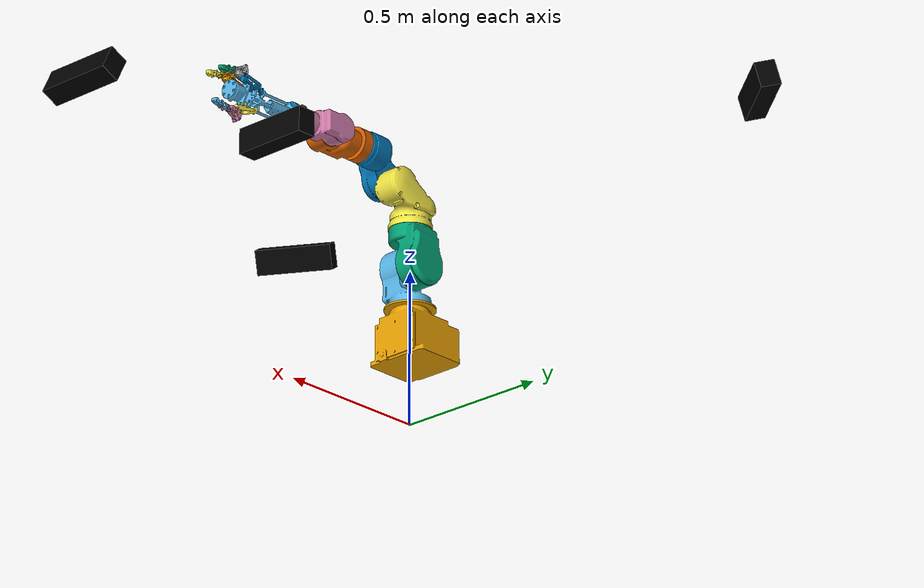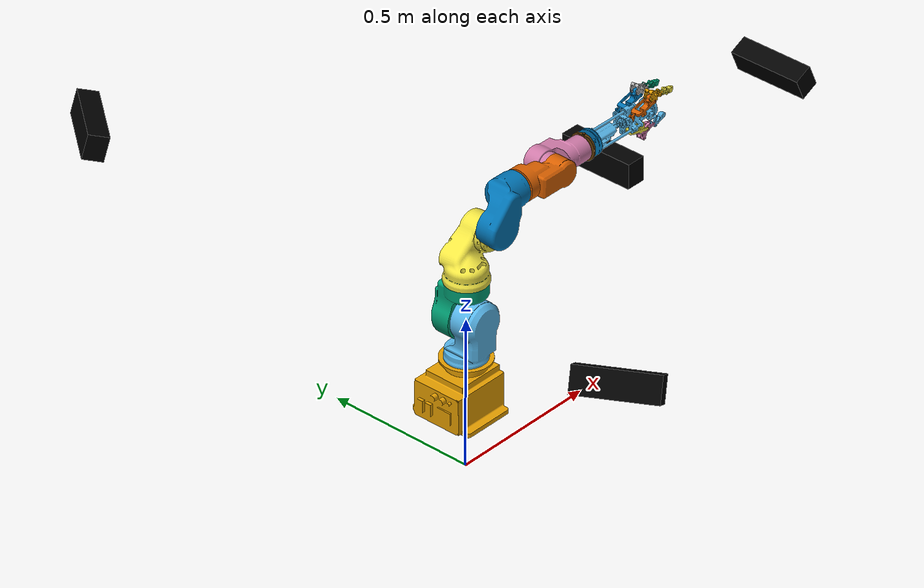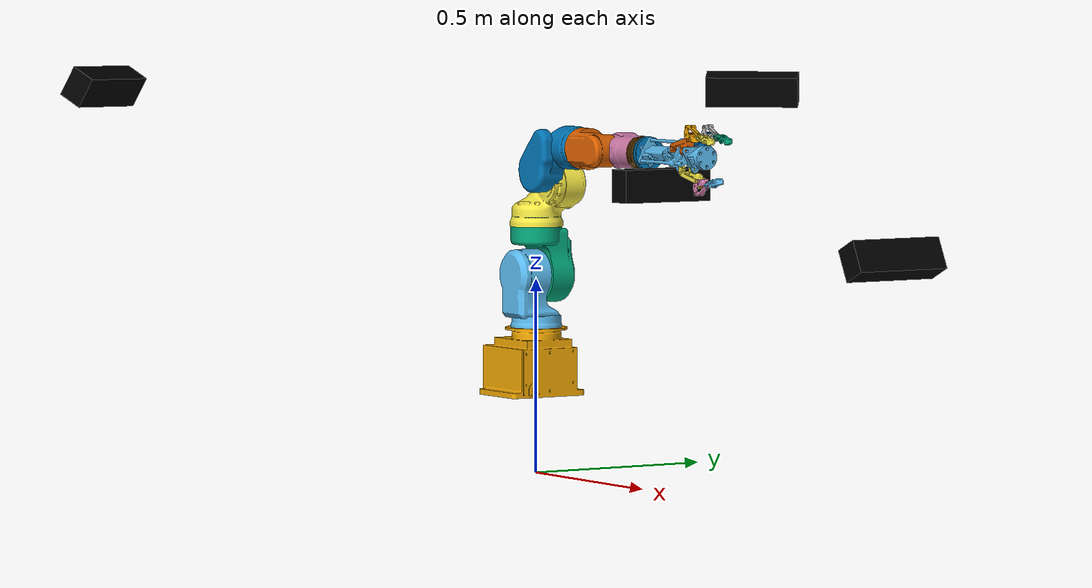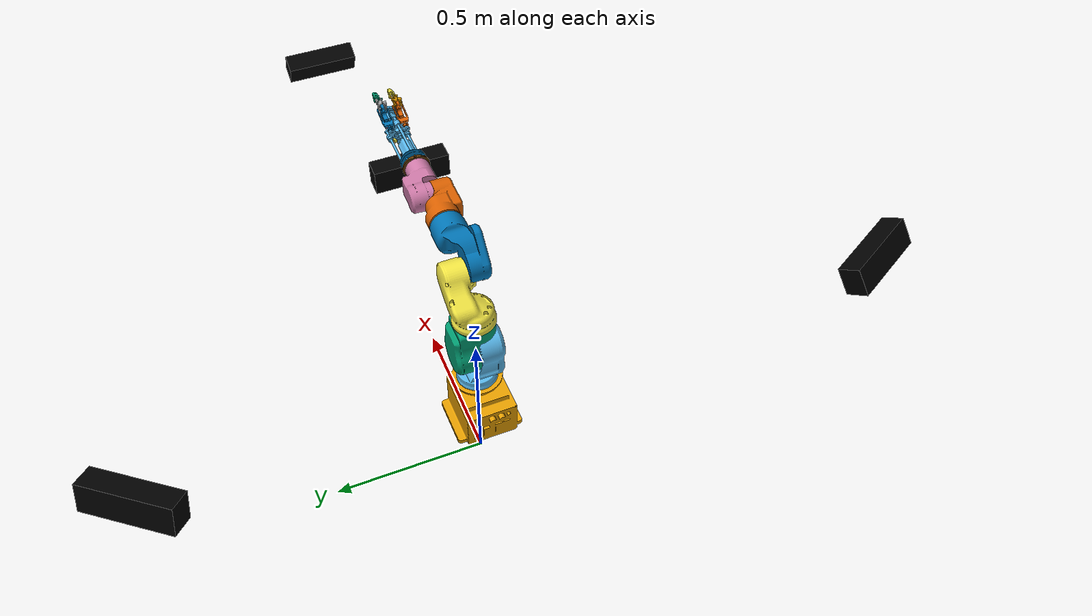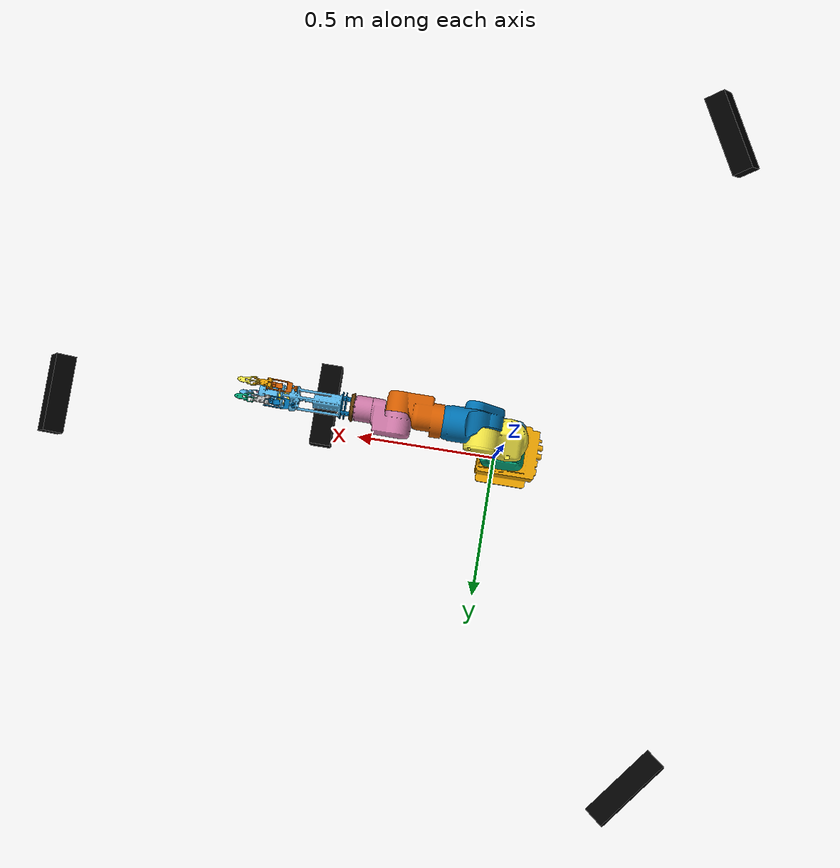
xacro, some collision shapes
<?xml version="1.0"?>
<robot name="sia5" xmlns:xacro="http://ros.org/wiki/xacro">
  <!-- File Include -->
  <xacro:include filename="$(find motoman_description)/urdf/sensor/kinect.urdf.xacro"/>
  <xacro:include filename="$(find motoman_description)/urdf/sensor/kinect.gazebo.xacro"/>
  <xacro:include filename="$(find motoman_description)/robots/sia5/sia5_with_dhand.urdf.xacro"/>

  <!-- add Kinect V2 -->
  <!-- Kinect_center -->
  <!-- Link -->
  <xacro:kinect2_link_box_v0 name="kinect_center_link"/>
  <link name="kinect_center_rgb_optical_frame"/>

  <!-- Joint -->
  <joint name="joint_kinect_center" type="fixed">
	<origin xyz="1.4721 0.0827 0.3932" rpy="-0.0031 0.4431 3.14" />
    <parent link="base_link"/>
    <child link="kinect_center_link"/>
  </joint>

  <joint name="joint_rgb_kinect_center" type="fixed">
    <origin rpy="${M_PI/2} ${M_PI} ${M_PI/2}"/>
    <parent link="kinect_center_link"/>
    <child link="kinect_center_rgb_optical_frame"/>
  </joint>

  <!-- Gazebo -->
  <xacro:kinect_gazebo name="kinect_center"/>

  <!-- Kinect_hand -->
  <!-- Link -->
  <xacro:kinect2_link_box_v0 name="kinect_hand_link"/>
  <link name="kinect_hand_rgb_optical_frame"/>

  <!-- Joint -->
  <joint name="joint_kinect_hand" type="fixed">
	<origin xyz="0.09 0 -0.035" rpy="${M_PI} 0 0" />
    <parent link="link_t"/>
    <child link="kinect_hand_link"/>
  </joint>

  <joint name="joint_rgb_kinect_hand" type="fixed">
    <origin rpy="${M_PI/2} ${M_PI} ${M_PI/2}"/>
    <parent link="kinect_hand_link"/>
    <child link="kinect_hand_rgb_optical_frame"/>
  </joint>

  <!-- Gazebo -->
  <xacro:kinect_gazebo name="kinect_hand"/>

  <!-- Kinect_right -->
  <!-- Link -->
  <xacro:kinect2_link_box_v0 name="kinect_right_link"/>
  <link name="kinect_right_rgb_optical_frame"/>

  <!-- Joint -->
  <joint name="joint_kinect_right" type="fixed">
  <origin xyz="-0.5255 -0.9966 0.7635" rpy="-0.0233 0.5223 0.481" />
    <parent link="base_link"/>
    <child link="kinect_right_link"/>
  </joint>

  <joint name="joint_rgb_kinect_right" type="fixed">
    <origin rpy="${M_PI/2} ${M_PI} ${M_PI/2}"/>
    <parent link="kinect_right_link"/>
    <child link="kinect_right_rgb_optical_frame"/>
  </joint>

  <!-- Gazebo -->
  <xacro:kinect_gazebo name="kinect_right"/>

  <!-- Kinect_left -->
  <!-- Link -->
  <xacro:kinect2_link_box_v0 name="kinect_left_link"/>
  <link name="kinect_left_rgb_optical_frame"/>

  <!-- Joint -->
  <joint name="joint_left_right" type="fixed">
  <!-- Calibrated position -->
  <!-- Test positions -->
  <!-- test state -->
  <origin xyz="-0.485969 1.00226 0.71287" rpy="3.13765 2.87986 2.4732" /><!-- estimated state -->

    <parent link="base_link"/>
    <child link="kinect_left_link"/>
  </joint>

  <joint name="joint_rgb_kinect_left" type="fixed">
    <origin rpy="${M_PI/2} ${M_PI} ${M_PI/2}"/>
    <parent link="kinect_left_link"/>
    <child link="kinect_left_rgb_optical_frame"/>
  </joint>

  <!-- Gazebo -->
  <xacro:kinect_gazebo name="kinect_left"/>

</robot>

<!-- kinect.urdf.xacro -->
<robot xmlns:xacro="http://ros.org/wiki/xacro">

<xacro:macro name="kinect2_link_box_v0" params="name">
    <link name="${name}">
      <visual>
		<material name="black"/>
        <geometry>
          <mesh filename="package://motoman_description/meshes/sensor/visual/COLLADA/kinectv2.stl"/>
        </geometry>
      </visual>
      <collision>
		<origin xyz="0 0 0.041"/>
        <geometry>
		  <box size="0.065 0.25 0.082"/>
        </geometry>
      </collision>
      <inertial>
        <mass value="0.935"/>
        <inertia ixx="0.0053937" ixy="0" ixz="0"
				 iyy="0.00085311" iyz="0"
				 izz="0.00519899" />
      </inertial>
    </link>
</xacro:macro>
</robot>

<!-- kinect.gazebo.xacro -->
<robot xmlns:xacro="http://ros.org/wiki/xacro">

  <xacro:include filename="$(find motoman_description)/urdf/common.xacro" />

  <xacro:macro name="kinect_gazebo" params="name">
    <gazebo reference="${name}_link">
      <mu1>0.2</mu1>
      <mu2>0.2</mu2>
      <material>Gazebo/Black</material>
      <!-- hd -->
      <sensor type="depth" name="${name}">
        <always_on>true</always_on>
        <update_rate>30.0</update_rate>
        <camera>
          <horizontal_fov>${84.1*M_PI/180.0}</horizontal_fov>
          <image>
            <format>B8G8R8</format>
            <width>512</width>
            <height>424</height>
          </image>
          <clip>
            <near>0.05</near>
            <far>4.5</far>
          </clip>
          <noise>
            <type>gaussian</type>
            <mean>0.0</mean>
            <stddev>0.005</stddev>
          </noise>
        </camera>
        <plugin name="${name}_camera_controller" filename="libgazebo_ros_openni_kinect.so">
          <cameraName>${name}/hd</cameraName>
          <alwaysOn>true</alwaysOn>
          <updateRate>30</updateRate>
          <imageTopicName>image_color</imageTopicName>
          <depthImageTopicName>image_depth</depthImageTopicName>
          <pointCloudTopicName>points</pointCloudTopicName>
          <cameraInfoTopicName>camera_info</cameraInfoTopicName>
          <depthImageCameraInfoTopicName>camera_info</depthImageCameraInfoTopicName>
          <frameName>${name}_rgb_optical_frame</frameName>
          <baseline>0.1</baseline>
          <distortion_k1>0.0</distortion_k1>
          <distortion_k2>0.0</distortion_k2>
          <distortion_k3>0.0</distortion_k3>
          <distortion_t1>0.0</distortion_t1>
          <distortion_t2>0.0</distortion_t2>
          <pointCloudCutoff>0.05</pointCloudCutoff>
          <pointCloudCutoffMax>4.5</pointCloudCutoffMax>
        </plugin>
      </sensor>

      <!-- qhd -->
      <sensor type="depth" name="${name}">
        <always_on>true</always_on>
        <update_rate>30.0</update_rate>
        <camera>
          <horizontal_fov>${84.1*M_PI/180.0}</horizontal_fov>
          <image>
            <format>B8G8R8</format>
            <width>512</width>
            <height>424</height>
          </image>
          <clip>
            <near>0.05</near>
            <far>4.5</far>
          </clip>
          <noise>
            <type>gaussian</type>
            <mean>0.0</mean>
            <stddev>0.005</stddev>
          </noise>
        </camera>
        <plugin name="${name}_camera_controller" filename="libgazebo_ros_openni_kinect.so">
          <cameraName>${name}/qhd</cameraName>
          <alwaysOn>true</alwaysOn>
          <updateRate>30</updateRate>
          <imageTopicName>image_color</imageTopicName>
          <depthImageTopicName>image_depth</depthImageTopicName>
          <pointCloudTopicName>points</pointCloudTopicName>
          <cameraInfoTopicName>camera_info</cameraInfoTopicName>
          <depthImageCameraInfoTopicName>camera_info</depthImageCameraInfoTopicName>
          <frameName>${name}_rgb_optical_frame</frameName>
          <baseline>0.1</baseline>
          <distortion_k1>0.0</distortion_k1>
          <distortion_k2>0.0</distortion_k2>
          <distortion_k3>0.0</distortion_k3>
          <distortion_t1>0.0</distortion_t1>
          <distortion_t2>0.0</distortion_t2>
          <pointCloudCutoff>0.05</pointCloudCutoff>
          <pointCloudCutoffMax>4.5</pointCloudCutoffMax>
        </plugin>
      </sensor>

      <!-- sd -->
      <sensor type="depth" name="${name}">
        <always_on>true</always_on>
        <update_rate>30.0</update_rate>
        <camera>
          <horizontal_fov>${84.1*M_PI/180.0}</horizontal_fov>
          <image>
            <format>B8G8R8</format>
            <width>512</width>
            <height>424</height>
          </image>
          <clip>
            <near>0.05</near>
            <far>4.5</far>
          </clip>
          <noise>
            <type>gaussian</type>
            <mean>0.0</mean>
            <stddev>0.005</stddev>
          </noise>
        </camera>
        <plugin name="${name}_camera_controller" filename="libgazebo_ros_openni_kinect.so">
          <cameraName>${name}/sd</cameraName>
          <alwaysOn>true</alwaysOn>
          <updateRate>30</updateRate>
          <imageTopicName>image_color</imageTopicName>
          <depthImageTopicName>image_depth</depthImageTopicName>
          <pointCloudTopicName>points</pointCloudTopicName>
          <cameraInfoTopicName>camera_info</cameraInfoTopicName>
          <depthImageCameraInfoTopicName>camera_info</depthImageCameraInfoTopicName>
          <frameName>${name}_rgb_optical_frame</frameName>
          <baseline>0.1</baseline>
          <distortion_k1>0.0</distortion_k1>
          <distortion_k2>0.0</distortion_k2>
          <distortion_k3>0.0</distortion_k3>
          <distortion_t1>0.0</distortion_t1>
          <distortion_t2>0.0</distortion_t2>
          <pointCloudCutoff>0.05</pointCloudCutoff>
          <pointCloudCutoffMax>4.5</pointCloudCutoffMax>
        </plugin>
      </sensor>
    </gazebo>
  </xacro:macro>
</robot>

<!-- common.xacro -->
<robot xmlns:xacro="http://ros.org/wiki/xacro">
    <xacro:property name="M_PI" value="3.14159274" />
</robot>

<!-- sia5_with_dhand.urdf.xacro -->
<robot name="sia5" xmlns:xacro="http://ros.org/wiki/xacro">

  <!-- File Include -->
  <xacro:include filename="$(find motoman_description)/robots/sia5/sia5_basic.urdf.xacro"/>
  <xacro:include filename="$(find dhand_description)/robots/dhand_adapted.urdf.xacro"/>

  <xacro:add_world>
    <origin xyz="0 0 0.2" rpy="0 0 0"/>
  </xacro:add_world>

  <!-- Joint -->
  <joint name="dhand_adapter_joint" type="fixed">
	<origin xyz="0 0 0" rpy="${M_PI} 0 0"/>
	<parent link="tool0"/>
	<child link="dhand_adapter_link"/>
  </joint>

</robot>

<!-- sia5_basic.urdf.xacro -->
<robot name="sia5" xmlns:xacro="http://ros.org/wiki/xacro">
  <!-- File Include -->
  <xacro:include filename="$(find motoman_description)/urdf/common.xacro" />
  <xacro:include filename="$(find motoman_description)/urdf/materials.xacro"/>
  <xacro:include filename="$(find motoman_description)/urdf/sia5/body.urdf.xacro" />
  <xacro:include filename="$(find motoman_description)/urdf/sia5/body.transmission.xacro"/>
  <xacro:include filename="$(find motoman_description)/urdf/sia5/body.gazebo.xacro"/>

  <!-- Mass -->
  <xacro:property name="sum_mass" value="30.0" />
  <!-- about mass rate -->
  <xacro:property name="table_mass" value="40.0" />
  <xacro:property name="base_rate" value="8.5" />
  <xacro:property name="s_rate" value="7.7" />
  <xacro:property name="l_rate" value="7.0" />
  <xacro:property name="e_rate" value="1.2" />
  <xacro:property name="u_rate" value="1.0" />
  <xacro:property name="r_rate" value="0.9" />
  <xacro:property name="b_rate" value="0.8" />
  <xacro:property name="t_rate" value="0.5" />
  <!-- Hard ware limits -->
  <!-- Range limits -->
  <xacro:property name="s_axis_upper_limit" value="${179.99999*M_PI/180.0*0.95}"/>
  <xacro:property name="s_axis_lower_limit" value="-${s_axis_upper_limit}"/>
  <xacro:property name="l_axis_upper_limit" value="${110.0*M_PI/180.0*0.95}"/>
  <xacro:property name="l_axis_lower_limit" value="-${l_axis_upper_limit}"/>
  <xacro:property name="e_axis_upper_limit" value="${170.0*M_PI/180.0*0.95}"/>
  <xacro:property name="e_axis_lower_limit" value="-${e_axis_upper_limit}"/>
  <xacro:property name="u_axis_upper_limit" value="${115.0*M_PI/180.0*0.95}"/>
  <xacro:property name="u_axis_lower_limit" value="${-90.0*M_PI/180.0*0.95}"/>
  <xacro:property name="r_axis_upper_limit" value="${179.99999*M_PI/180.0*0.95}"/>
  <xacro:property name="r_axis_lower_limit" value="-${r_axis_upper_limit}"/>
  <xacro:property name="b_axis_upper_limit" value="${110.0*M_PI/180.0*0.95}"/>
  <xacro:property name="b_axis_lower_limit" value="-${b_axis_upper_limit}"/>
  <xacro:property name="t_axis_upper_limit" value="${179.99999*M_PI/180.0*0.95}"/>
  <xacro:property name="t_axis_lower_limit" value="-${t_axis_upper_limit}"/>
  <!-- Velocity limits -->
  <xacro:property name="s_axis_velocity_limit" value="${200.0*M_PI/180.0*0.95}"/>
  <xacro:property name="l_axis_velocity_limit" value="${200.0*M_PI/180.0*0.95}"/>
  <xacro:property name="e_axis_velocity_limit" value="${200.0*M_PI/180.0*0.95}"/>
  <xacro:property name="u_axis_velocity_limit" value="${200.0*M_PI/180.0*0.95}"/>
  <xacro:property name="r_axis_velocity_limit" value="${200.0*M_PI/180.0*0.95}"/>
  <xacro:property name="b_axis_velocity_limit" value="${230.0*M_PI/180.0*0.95}"/>
  <xacro:property name="t_axis_velocity_limit" value="${350.0*M_PI/180.0*0.95}"/>

  <!-- Add macro -->
  <xacro:macro name="add_world" params="*origin">
    <link name="world"/>
    <joint name="world" type="fixed">
      <xacro:insert_block name="origin"/>
      <parent link="world"/>
      <child link="base_link"/>
    </joint>
  </xacro:macro>

  <!-- link -->
  <xacro:link_box_v0 name="base_link" mass="${base_rate/sum_rate*sum_mass}"
                     width="0.1665" depth="0.1976" height="0.1465"
                     ox="-0.025918" oy="-0.000376" oz="0.076105" oroll="0" opitch="0" oyaw="0"/>
  <xacro:link_cylinder_plus_box_v0 name="link_s"
                                   ox="0" oy="0" oz="0" oroll="0" opitch="0" oyaw="0"
                                   mass_cyl="${s_rate/sum_rate*sum_mass*0.2}"
                                   radius_cyl="0.066" height_cyl="0.031"
                                   mass_box="${s_rate/sum_rate*sum_mass*0.8}"
                                   width_box="0.0851" depth_box="0.1" height_box="0.1823"/>
  <xacro:link_cylinder_plus_box_v0 name="link_l"
                                   ox="0" oy="-0.006" oz="0.15" oroll="${M_PI}" opitch="0" oyaw="0"
                                   mass_cyl="${l_rate/sum_rate*sum_mass*0.4}"
                                   radius_cyl="0.066" height_cyl="0.073"
                                   mass_box="${l_rate/sum_rate*sum_mass*0.6}"
                                   width_box="0.073" depth_box="0.1089" height_box="0.149"/>
  <xacro:link_cylinder_plus_box_v0 name="link_e"
                                   ox="0" oy="0" oz="0" oroll="0" opitch="0" oyaw="${-M_PI/2}"
                                   mass_cyl="${e_rate/sum_rate*sum_mass*0.56}"
                                   radius_cyl="0.0685" height_cyl="0.0661"
                                   mass_box="${e_rate/sum_rate*sum_mass*0.44}"
                                   width_box="0.1234" depth_box="0.063" height_box="0.1176"/>
  <xacro:link_cylinder_plus_box_v0 name="link_u"
                                   ox="0.008" oy="-0.06" oz="-0.131" oroll="${-M_PI}" opitch="${M_PI/2}" oyaw="0"
                                   mass_cyl="${u_rate/sum_rate*sum_mass*0.48}"
                                   radius_cyl="0.055" height_cyl="0.0698"
                                   mass_box="${u_rate/sum_rate*sum_mass*0.52}"
                                   width_box="0.13174" depth_box="0.068" height_box="0.104"/>
  <xacro:link_cylinder_plus_box_v0 name="link_r"
                                     ox="0" oy="0" oz="0" oroll="0" opitch="0" oyaw="${-M_PI/2}"
                                     mass_cyl="${r_rate/sum_rate*sum_mass*0.25}"
                                     radius_cyl="0.0525" height_cyl="0.038"
                                     mass_box="${r_rate/sum_rate*sum_mass*0.75}"
                                     width_box="0.0645" depth_box="0.084" height_box="0.1425"/>
  <xacro:link_cylinder_plus_box_v0 name="link_b"
                                     ox="0" oy="0.0045" oz="0.1365" oroll="${M_PI/2}" opitch="${-M_PI/2}" oyaw="0"
                                     mass_cyl="${b_rate/sum_rate*sum_mass*0.55}"
                                     radius_cyl="0.04" height_cyl="0.0948"
                                     mass_box="${b_rate/sum_rate*sum_mass*0.45}"
                                     width_box="0.0676" depth_box="0.076" height_box="0.0627"/>
  <xacro:link_v1 name="link_t" mass="${t_rate/sum_rate*sum_mass}"
                   ixx="0.003" ixy="0" ixz="0"
                   iyy="0.003" iyz="0"
                   izz="0.001"/>
  <link name="tool0"/>

  <!-- joint -->
  <xacro:joint_v1 joint_name="joint_s"
                  parent_name="base_link" child_name="link_s"
                  ox="0" oy="0" oz="0.1765"
                  roll="0" pitch="0" yaw="0"
                  ax="0" ay="0" az="1"
                  el="30.0"
                  ll="${s_axis_lower_limit}" ul="${s_axis_upper_limit}"
                  vl="${s_axis_velocity_limit}"
                  skp="1" skv="1"
                  sll="${s_axis_lower_limit}" sul="${s_axis_upper_limit}"/>
  <xacro:joint_v1 joint_name="joint_l"
                  parent_name="link_s" child_name="link_l"
                  ox="0" oy="0.006" oz="0.136"
                  roll="0" pitch="0" yaw="0"
                  ax="0" ay="1" az="0"
                  el="30.0"
                  ll="${l_axis_lower_limit}" ul="${l_axis_upper_limit}"
                  vl="${l_axis_velocity_limit}"
                  skp="1" skv="1"
                  sll="${l_axis_lower_limit}" sul="${l_axis_upper_limit}"/>
  <xacro:joint_v1 joint_name="joint_e"
                  parent_name="link_l" child_name="link_e"
                  ox="0" oy="-0.006" oz="0.15"
                  roll="0" pitch="0" yaw="0"
                  ax="0" ay="0" az="1"
                  el="30.0"
                  ll="${e_axis_lower_limit}" ul="${e_axis_upper_limit}"
                  vl="${e_axis_velocity_limit}"
                  skp="1" skv="1"
                  sll="${e_axis_lower_limit}" sul="${e_axis_upper_limit}"/>
  <xacro:joint_v1 joint_name="joint_u"
                  parent_name="link_e" child_name="link_u"
                  ox="0.085" oy="-0.00826931" oz="0.12275299"
                  roll="${M_PI/2.0}" pitch="0" yaw="0"
                  ax="0" ay="0" az="1"
                  el="30.0"
                  ll="${u_axis_lower_limit}" ul="${u_axis_upper_limit}"
                  vl="${u_axis_velocity_limit}"
                  skp="1" skv="1"
                  sll="${u_axis_lower_limit}" sul="${u_axis_upper_limit}"/>
  <xacro:joint_v1 joint_name="joint_r"
                  parent_name="link_u" child_name="link_r"
                  ox="0.131" oy="0.06" oz="-0.008"
                  roll="0" pitch="${M_PI/2}" yaw="0"
                  ax="0" ay="0" az="-1"
                  el="14.7"
                  ll="${r_axis_lower_limit}" ul="${r_axis_upper_limit}"
                  vl="${r_axis_velocity_limit}"
                  skp="1" skv="1"
                  sll="${r_axis_lower_limit}" sul="${r_axis_upper_limit}"/>
  <xacro:joint_v1 joint_name="joint_b"
                  parent_name="link_r" child_name="link_b"
                  ox="-0.0045" oy="0" oz="0.139"
                  roll="0" pitch="${-M_PI/2}" yaw="0"
                  ax="0" ay="0" az="1"
                  el="14.7"
                  ll="${b_axis_lower_limit}" ul="${b_axis_upper_limit}"
                  vl="${b_axis_velocity_limit}"
                  skp="1" skv="1"
                  sll="${b_axis_lower_limit}" sul="${b_axis_upper_limit}"/>
  <xacro:joint_v1 joint_name="joint_t"
                  parent_name="link_b" child_name="link_t"
                  ox="0.1365" oy="0" oz="-0.0045"
                  roll="${-M_PI/2}" pitch="0" yaw="0"
                  ax="-1" ay="0" az="0"
                  el="7.35"
                  ll="${t_axis_lower_limit}" ul="${t_axis_upper_limit}"
                  vl="${t_axis_velocity_limit}"
                  skp="1" skv="1"
                  sll="${t_axis_lower_limit}" sul="${t_axis_upper_limit}"/>
  <joint name="joint_tool0" type="fixed">
    <origin rpy="0 0 0" xyz="0.0115 0 0"/>
    <parent link="link_t"/>
    <child link="tool0"/>
  </joint>

  <!-- transmission -->
  <xacro:simple_jp_trans_v0 name="transmission_s"
                            joint_name="joint_s" actuator_name="motor_s"
                            reduction="300"/>
  <xacro:simple_jp_trans_v0 name="transmission_l"
                            joint_name="joint_l" actuator_name="motor_l"
                            reduction="300"/>
  <xacro:simple_jp_trans_v0 name="transmission_e"
                            joint_name="joint_e" actuator_name="motor_e"
                            reduction="100"/>
  <xacro:simple_jp_trans_v0 name="transmission_u"
                            joint_name="joint_u" actuator_name="motor_u"
                            reduction="50"/>
  <xacro:simple_jp_trans_v0 name="transmission_r"
                            joint_name="joint_r" actuator_name="motor_r"
                            reduction="30"/>
  <xacro:simple_jp_trans_v0 name="transmission_b"
                            joint_name="joint_b" actuator_name="motor_b"
                            reduction="30"/>
  <xacro:simple_jp_trans_v0 name="transmission_t"
                            joint_name="joint_t" actuator_name="motor_t"
                            reduction="10"/>

  <!-- gazebo -->
  <gazebo>
    <plugin name="gazebo_ros_control" filename="libgazebo_ros_control.so">
      <robotSimType>gazebo_ros_control/DefaultRobotHWSim</robotSimType>
    </plugin>
  </gazebo>
  <xacro:gazebo_link_v1 name="base_link"/>
  <xacro:gazebo_link_v1 name="link_s"/>
  <xacro:gazebo_link_v1 name="link_l"/>
  <xacro:gazebo_link_v1 name="link_e"/>
  <xacro:gazebo_link_v1 name="link_u"/>
  <xacro:gazebo_link_v1 name="link_r"/>
  <xacro:gazebo_link_v1 name="link_b"/>
  <xacro:gazebo_link_v1 name="link_t"/>
</robot>

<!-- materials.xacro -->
<robot xmlns:xacro="http://ros.org/wiki/xacro">

  <material name="black">
    <color rgba="0.0 0.0 0.0 1.0"/>
  </material>

  <material name="blue">
    <color rgba="0.0 0.0 0.8 1.0"/>
  </material>

  <material name="green">
    <color rgba="0.0 0.8 0.0 1.0"/>
  </material>

  <material name="grey">
    <color rgba="0.2 0.2 0.2 1.0"/>
  </material>

  <material name="orange">
    <color rgba="${255/255} ${108/255} ${10/255} 1.0"/>
  </material>

  <material name="brown">
    <color rgba="${222/255} ${207/255} ${195/255} 1.0"/>
  </material>

  <material name="red">
    <color rgba="0.8 0.0 0.0 1.0"/>
  </material>

  <material name="white">
    <color rgba="1.0 1.0 1.0 1.0"/>
  </material>

</robot>

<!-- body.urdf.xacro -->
<robot xmlns:xacro="http://ros.org/wiki/xacro">
  <xacro:property name="sum_rate" value="${base_rate + s_rate
                                      + l_rate + e_rate
                                      + u_rate + r_rate
                                      + b_rate + t_rate}" />

  <xacro:macro name="link_v1" params="name mass
                                      ixx ixy ixz
                                      iyy iyz izz">
    <link name="${name}">
      <visual>
        <geometry>
          <mesh filename="package://motoman_description/meshes/sia5/visual/COLLADA/${name}.dae"/>
        </geometry>
      </visual>
      <collision>
        <geometry>
          <mesh filename="package://motoman_description/meshes/sia5/collision/STL/${name}.stl"/>
        </geometry>
      </collision>
      <inertial>
        <mass value="${mass}"/>
        <inertia ixx="${ixx}" ixy="${ixy}" ixz="${ixz}" iyy="${iyy}" iyz="${iyz}" izz="${izz}" />
      </inertial>
    </link>
  </xacro:macro>

  <xacro:macro name="link_cylinder_v0" params="name mass radius height
                                               ox oy oz oroll opitch oyaw">
    <link name="${name}">
      <visual>
        <geometry>
          <mesh filename="package://motoman_description/meshes/sia5/visual/COLLADA/${name}.dae"/>
        </geometry>
      </visual>
      <collision>
        <geometry>
          <mesh filename="package://motoman_description/meshes/sia5/collision/STL/${name}.stl"/>
        </geometry>
      </collision>
      <inertial>
		<origin xyz="${ox} ${oy} ${oz}" rpy="${oroll} ${opitch} ${oyaw}"/>
        <mass value="${mass}"/>
        <inertia ixx="${mass*((radius*radius)/4+(height*height)/12)}" ixy="0" ixz="0"
				 iyy="${mass*((radius*radius)/4+(height*height)/12)}" iyz="0"
				 izz="${(mass*radius*radius)/2}" />
      </inertial>
    </link>
  </xacro:macro>

  <xacro:macro name="link_box_v0" params="name mass width depth  height
                                          ox oy oz oroll opitch oyaw">
    <link name="${name}">
      <visual>
        <geometry>
          <mesh filename="package://motoman_description/meshes/sia5/visual/COLLADA/${name}.dae"/>
        </geometry>
      </visual>
      <collision>
        <geometry>
          <mesh filename="package://motoman_description/meshes/sia5/collision/STL/${name}.stl"/>
        </geometry>
      </collision>
      <inertial>
		<origin xyz="${ox} ${oy} ${oz}" rpy="${oroll} ${opitch} ${oyaw}"/>
        <mass value="${mass}"/>
        <inertia ixx="${(mass*((width/2)*(width/2)+(height/2)*(height/2)))/3}" ixy="0" ixz="0"
				 iyy="${(mass*((depth/2)*(depth/2)+(height/2)*(height/2)))/3}" iyz="0"
				 izz="${(mass*((depth/2)*(depth/2)+(width/2)*(width/2)))/3}" />
      </inertial>
    </link>
  </xacro:macro>

  <xacro:macro name="link_box_v1" params="name mass width depth height
                                          ox oy oz oroll opitch oyaw">
    <link name="${name}">
      <visual>
        <geometry>
          <mesh filename="package://motoman_description/meshes/sia5/visual/COLLADA/${name}.dae"/>
        </geometry>
      </visual>
      <collision>
		<origin xyz="0 ${oy} -${oz}" rpy="${oroll} ${opitch} ${oyaw}"/>
        <geometry>
		  <box size="${depth} ${width} ${height}"/>
        </geometry>
      </collision>
      <inertial>
		<origin xyz="${ox} ${oy} ${oz}" rpy="${oroll} ${opitch} ${oyaw}"/>
        <mass value="${mass}"/>
        <inertia ixx="${(mass*((width/2)*(width/2)+(height/2)*(height/2)))/3}" ixy="0" ixz="0"
				 iyy="${(mass*((depth/2)*(depth/2)+(height/2)*(height/2)))/3}" iyz="0"
				 izz="${(mass*((depth/2)*(depth/2)+(width/2)*(width/2)))/3}" />
      </inertial>
    </link>
  </xacro:macro>

  <xacro:macro name="link_cylinder_plus_box_v0" params="name
                                                        ox oy oz oroll opitch oyaw
                                                        mass_cyl radius_cyl height_cyl
                                                        mass_box width_box depth_box height_box">
    <link name="${name}">
      <visual>
        <geometry>
          <mesh filename="package://motoman_description/meshes/sia5/visual/COLLADA/${name}.dae"/>
        </geometry>
      </visual>
      <collision>
        <geometry>
          <mesh filename="package://motoman_description/meshes/sia5/collision/STL/${name}.stl"/>
        </geometry>
      </collision>
      <inertial>
		<origin xyz="${ox} ${oy} ${oz}" rpy="${oroll} ${opitch} ${oyaw}"/>
        <mass value="${mass_cyl+mass_box}"/>
        <inertia ixx="${mass_cyl*((radius_cyl*radius_cyl)/4+(height_cyl*height_cyl)/3)+mass_box/3*(width_box*width_box+height_box*height_box)+mass_box*(radius_cyl*radius_cyl-radius_cyl*width_box+height_cyl*height_cyl+height_cyl*height_box)}" ixy="0" ixz="0"
                 iyy="${mass_cyl*((radius_cyl*radius_cyl)/4+(height_cyl*height_cyl)/12)+mass_box/3*(depth_box*depth_box+height_box*height_box)+mass_box*(radius_cyl*radius_cyl-radius_cyl*depth_box+height_cyl*height_cyl+height_cyl*height_box)}" iyz="0"
                 izz="${(mass_cyl*radius_cyl*radius_cyl)/2+mass_box/3*(depth_box*depth_box+width_box*width_box)+mass_box*(2*radius_cyl*radius_cyl-radius_cyl*depth_box-radius_cyl*width_box)}" />
      </inertial>
    </link>
  </xacro:macro>

  <xacro:macro name="joint_v1" params="joint_name
                                       parent_name child_name
                                       ox oy oz roll pitch yaw ax ay az
                                       el ll ul vl
                                       skp skv sll sul">
    <joint name="${joint_name}" type="revolute">
      <origin xyz="${ox} ${oy} ${oz}" rpy="${roll} ${pitch} ${yaw}"/>
      <parent link="${parent_name}"/>
      <child link="${child_name}"/>
      <axis xyz="${ax} ${ay} ${az}"/>
      <dynamics damping="0.7" friction="0.7"/>
      <limit effort="${el}" lower="${ll}" upper="${ul}" velocity="${vl}"/>
    </joint>
  </xacro:macro>
</robot>

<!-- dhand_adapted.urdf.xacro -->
<robot name="dhand" xmlns:xacro="http://ros.org/wiki/xacro">

  <xacro:include filename="$(find dhand_description)/robots/dhand.urdf.xacro"/>
  <xacro:include filename="$(find dhand_description)/urdf/adapter/adapter.urdf.xacro"/>

  <joint name="dhand_base_joint" type="fixed">
	<origin xyz="0.028 0 0" rpy="0 0 0"/>
	<parent link="dhand_adapter_link"/>
	<child link="dhand_base_link"/>
  </joint>
  <xacro:dhand_adapter_v0/>

</robot>

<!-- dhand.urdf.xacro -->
<robot name="dhand" xmlns:xacro="http://ros.org/wiki/xacro">

  <xacro:include filename="$(find dhand_description)/urdf/common.xacro"/>
  <xacro:include filename="$(find dhand_description)/urdf/base/base.urdf.xacro"/>
  <xacro:include filename="$(find dhand_description)/urdf/finger/finger.urdf.xacro"/>
  <xacro:include filename="$(find dhand_description)/urdf/adapter/adapter.urdf.xacro"/>

  <!-- =============== Inertial Info =============== -->
  <xacro:property name="finger_base_mass">
	<mass value="0.04234931"/>
  </xacro:property>
  <xacro:property name="finger_middle_mass">
	<mass value="0.02332939"/>
  </xacro:property>
  <xacro:property name="finger_top_mass">
	<mass value="0.01452790"/>
  </xacro:property>
  <xacro:property name="finger_base_inertia">
	<inertia ixx="1e-3" ixy="0.00000000" ixz="-0.00001443"
			 iyy="1e-3" iyz="0.00000000"
			 izz="1e-3" />
  </xacro:property>
  <xacro:property name="finger_middle_inertia">
	<inertia ixx="1e-3" ixy="0.00000220" ixz="0.00000000"
			 iyy="1e-3" iyz="0.00000004"
			 izz="1e-3" />
  </xacro:property>
  <xacro:property name="finger_top_inertia">
	<inertia ixx="1e-3" ixy="0.00000139" ixz="0.00000000"
			 iyy="1e-3" iyz="0.00000000"
			 izz="1e-3" />
  </xacro:property>

  <!-- =============== Link & Joint =============== -->
  <!-- ==== Base ==== -->
  <xacro:dhand_base_v0 />

  <!-- ==== finger base ==== -->
  <xacro:dhand_fixed_finger_base/>

  <xacro:dhand_finger_v0 parent="dhand_base_link" prefix="base" side="right">
  	<origin xyz="0.1865 -0.025964675 -0.01505875" rpy="${180*M_PI/180} ${-90*M_PI/180} 0"/>
  	<axis xyz="0 0 1"/>
	<limit effort="10.0" lower="${-120*M_PI/180}" upper="0.0" velocity="10.0"/>
  	<insert_block name="finger_base_mass"/>
  	<insert_block name="finger_base_inertia"/>
  </xacro:dhand_finger_v0>

  <xacro:dhand_finger_v0 parent="dhand_base_link" prefix="base" side="left">
  	<origin xyz="0.1865 0.02601464 -0.01494117" rpy="${-180*M_PI/180} ${-90*M_PI/180} 0"/>
  	<axis xyz="0 0 1"/>
	<limit effort="10.0" lower="0.0" upper="${120*M_PI/180}" velocity="10.0"/>
  	<insert_block name="finger_base_mass"/>
  	<insert_block name="finger_base_inertia"/>
  </xacro:dhand_finger_v0>

  <!--==== finger middle ====-->
  <xacro:dhand_finger_v0 parent="dhand_finger_base_middle_link" prefix="middle" side="middle">
  	<origin xyz="-0.0415 0 0.033" rpy="${90*M_PI/180} 0 0"/>
  	<axis xyz="0 0 -1"/>
	<limit effort="10.0" lower="0.0" upper="0.02" velocity="10.0"/>
  	<insert_block name="finger_middle_mass"/>
  	<insert_block name="finger_middle_inertia"/>
  </xacro:dhand_finger_v0>

  <xacro:dhand_finger_v0 parent="dhand_finger_base_right_link" prefix="middle" side="right">
  	<origin xyz="-0.0415 0 0.033" rpy="${90*M_PI/180} 0 0"/>
  	<axis xyz="0 0 -1"/>
	<limit effort="10.0" lower="0.0" upper="0.02" velocity="10.0"/>
  	<insert_block name="finger_middle_mass"/>
  	<insert_block name="finger_middle_inertia"/>
  </xacro:dhand_finger_v0>

  <xacro:dhand_finger_v0 parent="dhand_finger_base_left_link" prefix="middle" side="left">
  	<origin xyz="-0.0415 0 0.033" rpy="${90*M_PI/180} 0 0"/>
  	<axis xyz="0 0 -1"/>
	<limit effort="10.0" lower="0.0" upper="0.02" velocity="10.0"/>
  	<insert_block name="finger_middle_mass"/>
  	<insert_block name="finger_middle_inertia"/>
  </xacro:dhand_finger_v0>

  <!-- ==== finger top ==== -->
  <xacro:dhand_finger_v0 parent="dhand_finger_middle_middle_link" prefix="top" side="middle">
  	<origin xyz="0.00976095 0.0434937 0.0" rpy="0 0 0"/>
  	<axis xyz="0 0 -1"/>
	<limit effort="10.0" lower="0.0" upper="1.40" velocity="10.0"/>
  	<insert_block name="finger_top_mass"/>
  	<insert_block name="finger_top_inertia"/>
  </xacro:dhand_finger_v0>

  <xacro:dhand_finger_v0 parent="dhand_finger_middle_right_link" prefix="top" side="right">
  	<origin xyz="0.00976095 0.0434937 0.0" rpy="0 0 0"/>
  	<axis xyz="0 0 -1"/>
	<limit effort="10.0" lower="0.0" upper="1.40" velocity="10.0"/>
  	<insert_block name="finger_top_mass"/>
  	<insert_block name="finger_top_inertia"/>
  </xacro:dhand_finger_v0>

  <xacro:dhand_finger_v0 parent="dhand_finger_middle_left_link" prefix="top" side="left">
  	<origin xyz="0.00976095 0.0434937 0.0" rpy="0 0 0"/>
  	<axis xyz="0 0 -1"/>
	<limit effort="10.0" lower="0.0" upper="1.40" velocity="10.0"/>
  	<insert_block name="finger_top_mass"/>
  	<insert_block name="finger_top_inertia"/>
  </xacro:dhand_finger_v0>

  <!-- =============== Gazebo =============== -->
  <!-- ==== Adapter ==== -->
  <xacro:dhand_adapter_gazebo_v0/>
  <!-- ==== Base ==== -->
  <xacro:dhand_base_gazebo_v0/>
  <!-- ==== Fingers ==== -->
  <xacro:dhand_finger_gazebo_v0 prefix="base" side="middle"/>
  <xacro:dhand_finger_gazebo_v0 prefix="base" side="right"/>
  <xacro:dhand_finger_gazebo_v0 prefix="base" side="left"/>
  <xacro:dhand_finger_gazebo_v0 prefix="middle" side="middle"/>
  <xacro:dhand_finger_gazebo_v0 prefix="middle" side="right"/>
  <xacro:dhand_finger_gazebo_v0 prefix="middle" side="left"/>
  <xacro:dhand_finger_gazebo_v0 prefix="top" side="middle"/>
  <xacro:dhand_finger_gazebo_v0 prefix="top" side="right"/>
  <xacro:dhand_finger_gazebo_v0 prefix="top" side="left"/>

  <!-- ====== Transmissions ====== -->
  <xacro:dhand_finger_trans_v0 prefix="base" side="right"/>
  <xacro:dhand_finger_trans_v0 prefix="base" side="left"/>
  <xacro:dhand_finger_trans_v0 prefix="middle" side="middle"/>
  <xacro:dhand_finger_trans_v0 prefix="middle" side="right"/>
  <xacro:dhand_finger_trans_v0 prefix="middle" side="left"/>
  <xacro:dhand_finger_trans_v0 prefix="top" side="middle"/>
  <xacro:dhand_finger_trans_v0 prefix="top" side="right"/>
  <xacro:dhand_finger_trans_v0 prefix="top" side="left"/>

</robot>

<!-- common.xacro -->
<robot xmlns:xacro="http://ros.org/wiki/xacro">
  <property name="M_PI" value="3.14159274"/>
</robot>

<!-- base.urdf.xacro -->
<robot xmlns:xacro="http://ros.org/wiki/xacro">

  <xacro:include filename="$(find dhand_description)/urdf/base/base.gazebo.xacro"/>

  <xacro:macro name="dhand_base_v0">
    <link name="dhand_base_link">
      <visual>
        <geometry>
          <mesh filename="package://dhand_description/meshes/visual/base/base.dae"/>
        </geometry>
      </visual>
      <collision>
        <geometry>
          <mesh filename="package://dhand_description/meshes/collision/base.STL"/>
        </geometry>
      </collision>
      <inertial>
        <mass value="1.22813391"/>
        <inertia ixx="0.00052834" ixy="0.00000936" ixz="0.00000419"
				 iyy="0.01395061" iyz="0.00000326"
				 izz="0.01395381" />
      </inertial>
    </link>

	<joint name="dhand_palm_joint" type="fixed">
	  <origin xyz="0.255 0 0"/>
	  <parent link="dhand_base_link"/>
	  <child link="dhand_palm_link"/>
	</joint>

	<link name="dhand_palm_link"/>
  </xacro:macro>

</robot>

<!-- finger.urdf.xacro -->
<robot xmlns:xacro="http://ros.org/wiki/xacro">

  <xacro:include filename="$(find dhand_description)/urdf/common.xacro"/>
  <xacro:include filename="$(find dhand_description)/urdf/finger/finger.gazebo.xacro"/>
  <xacro:include filename="$(find dhand_description)/urdf/finger/finger.transmission.xacro"/>

  <xacro:macro name="dhand_finger_v0" params="parent prefix side *joint_origin *joint_axis *joint_limit *mass *inertia">
	<joint name="dhand_finger_${prefix}_${side}_joint" type="revolute">
	  <insert_block name="joint_origin"/>
	  <parent link="${parent}"/>
	  <child link="dhand_finger_${prefix}_${side}_link"/>
	  <insert_block name="joint_axis"/>
	  <dynamics damping="0.7" friction="0.7"/>
	  <insert_block name="joint_limit"/>
	</joint>

	<link name="dhand_finger_${prefix}_${side}_link">
	  <visual>
		<geometry>
		  <mesh filename="package://dhand_description/meshes/visual/finger/${prefix}/finger_${prefix}.dae"/>
		</geometry>
	  </visual>
	  <collision>
		<geometry>
		  <mesh filename="package://dhand_description/meshes/collision/finger/finger_${prefix}.STL"/>
		</geometry>
	  </collision>
	  <inertial>
		<insert_block name="mass"/>
	  	<insert_block name="inertia"/>
	  </inertial>
	</link>
  </xacro:macro>

  <xacro:macro name="dhand_fixed_finger_base">
	<joint name="dhand_finger_base_middle_joint" type="fixed">
	  <origin xyz="0.1865 0 0.03" rpy="0 ${90*M_PI/180} 0"/>
	  <parent link="dhand_base_link"/>
	  <child link="dhand_finger_base_middle_link"/>
	</joint>

	<link name="dhand_finger_base_middle_link">
	  <visual>
		<geometry>
		  <mesh filename="package://dhand_description/meshes/visual/finger/base/finger_base.dae"/>
		</geometry>
	  </visual>
	  <collision>
		<geometry>
		  <mesh filename="package://dhand_description/meshes/collision/finger/finger_base.STL"/>
		</geometry>
	  </collision>
	  <inertial>
		<mass value="0.04234931"/>
		<inertia ixx="1e-3" ixy="0.00000000" ixz="-0.00001443"
				 iyy="1e-3" iyz="0.00000000"
				 izz="1e-3" />
	  </inertial>
	</link>
  </xacro:macro>
</robot>

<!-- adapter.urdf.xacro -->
<robot xmlns:xacro="http://ros.org/wiki/xacro">

  <xacro:include filename="$(find dhand_description)/urdf/adapter/adapter.gazebo.xacro"/>

  <xacro:macro name="dhand_adapter_v0">
    <link name="dhand_adapter_link">
      <visual>
        <geometry>
          <mesh filename="package://dhand_description/meshes/visual/adapter/adapter.dae"/>
        </geometry>
      </visual>
      <collision>
        <geometry>
          <mesh filename="package://dhand_description/meshes/collision/adapter.STL"/>
        </geometry>
      </collision>
      <inertial>
        <mass value="0.09444833"/>
        <inertia ixx="1e-3" ixy="0.00000000" ixz="0.00000000"
				 iyy="1e-3" iyz="0.00000000"
				 izz="1e-3" />
      </inertial>
    </link>
  </xacro:macro>
</robot>
